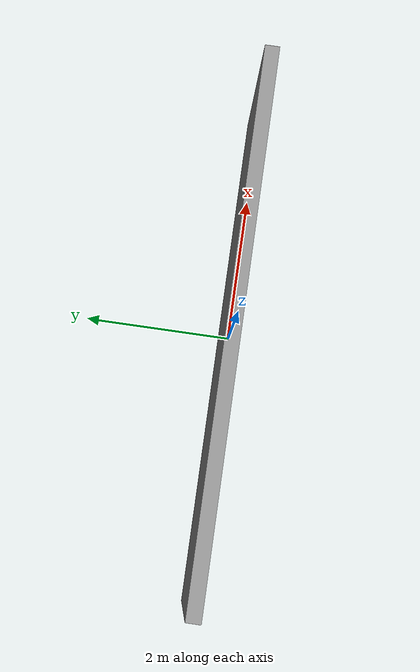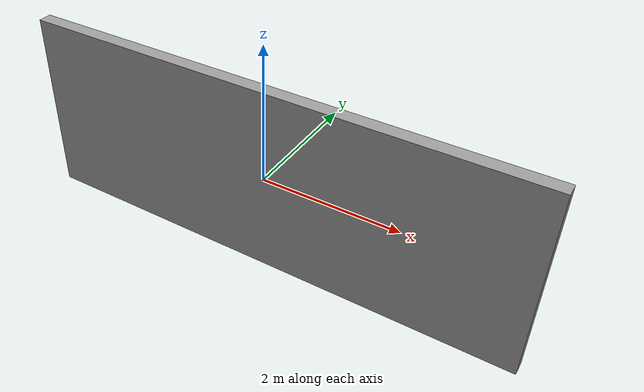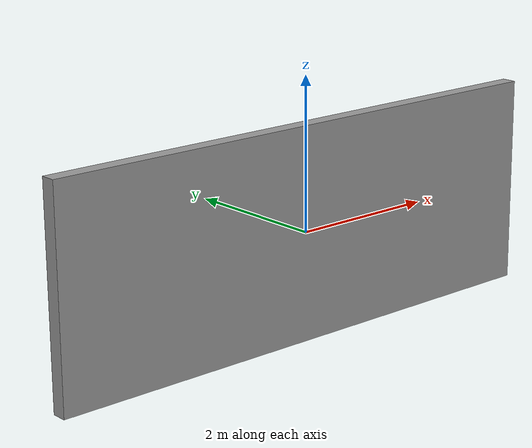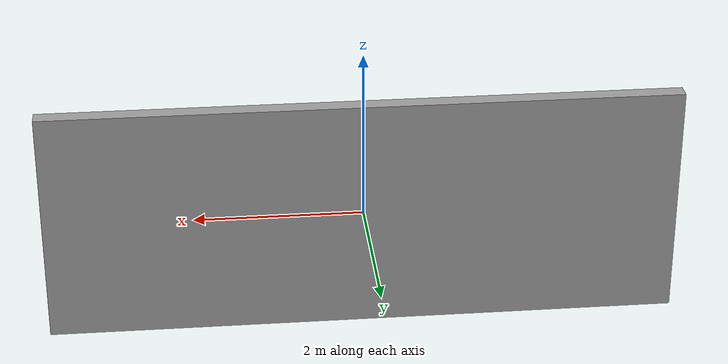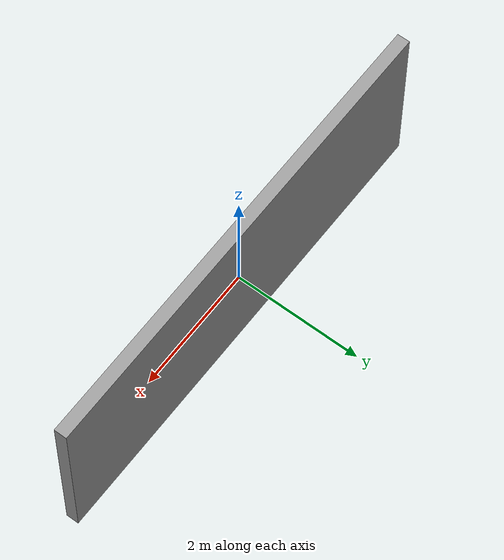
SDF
<?xml version="1.0" ?>
<sdf version="1.4">
  <model name="grey_wall">
    <static>true</static>
    <link name="link">
      <collision name="collision">
        <geometry>
          <box>
            <size>7.5 0.2 2.8</size>
          </box>
        </geometry>
      </collision>
      <visual name="visual">
        <cast_shadows>false</cast_shadows>
        <geometry>
          <box>
            <size>7.5 0.2 2.8</size>
          </box>
        </geometry>
        <material>
          <script>
            <uri>model://grey_wall/materials/scripts</uri>
            <uri>model://grey_wall/materials/textures</uri>
            <name>vrc/grey_wall</name>
          </script>
        </material>
      </visual>
    </link>
  </model>
</sdf>
